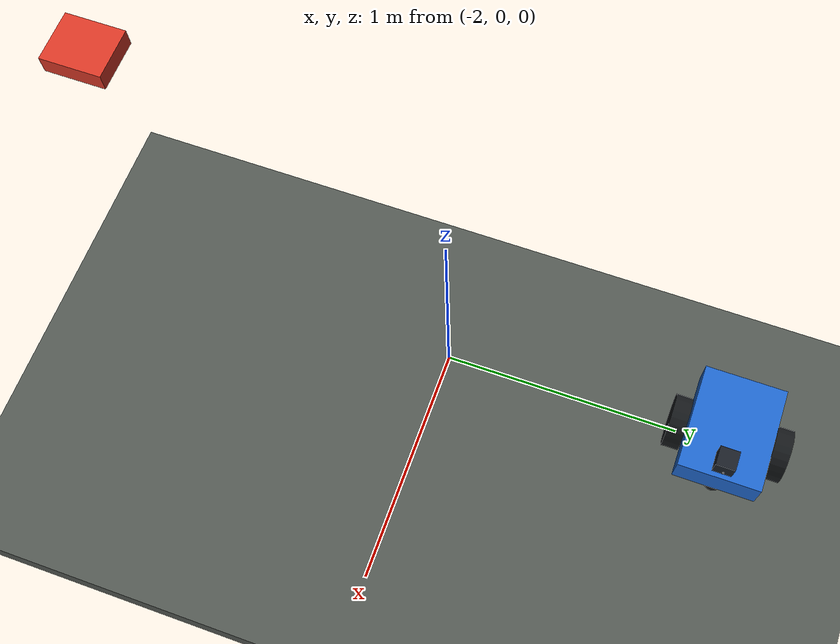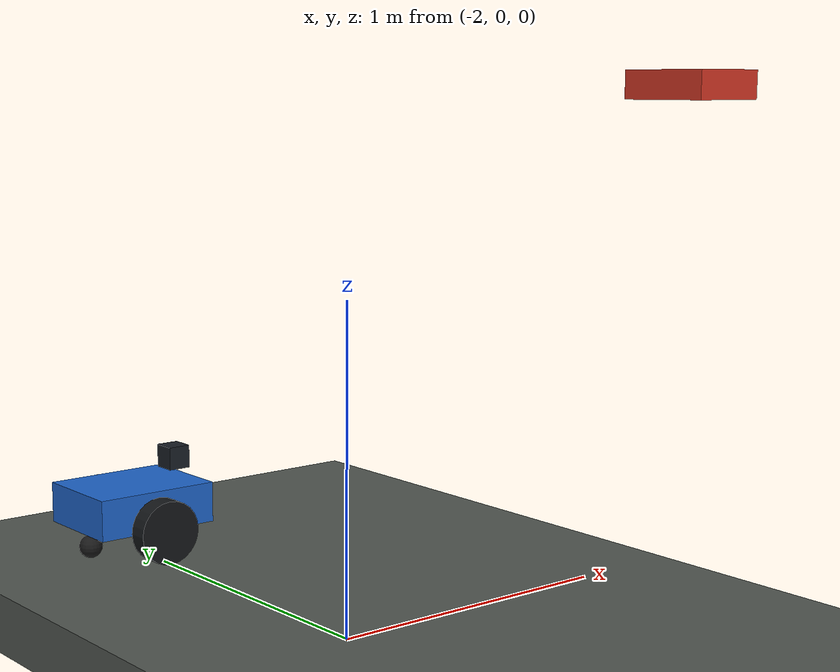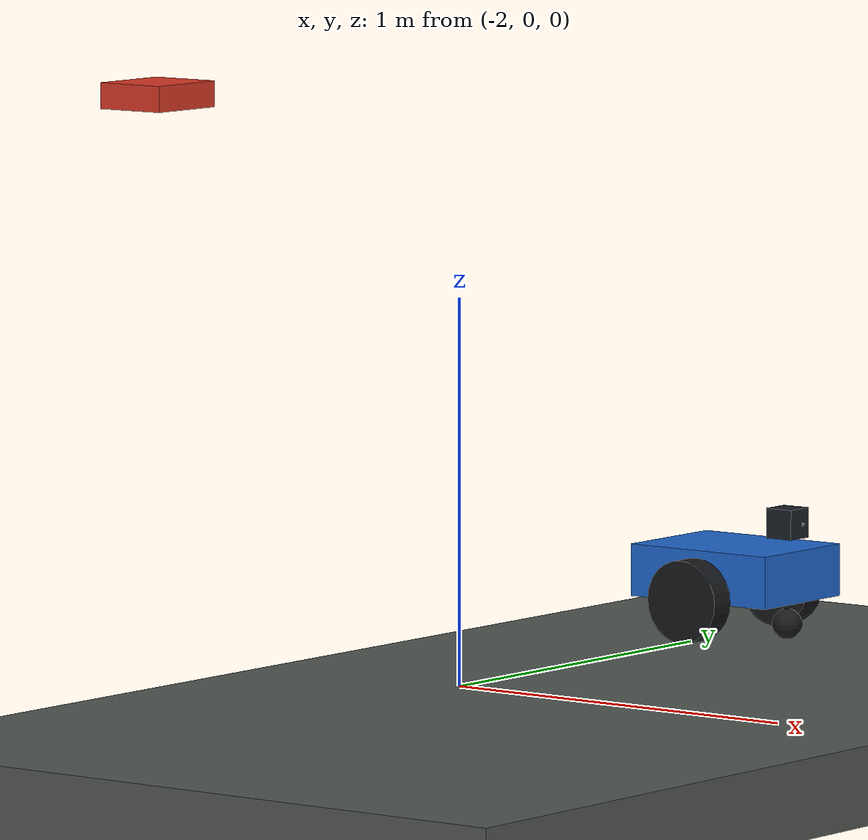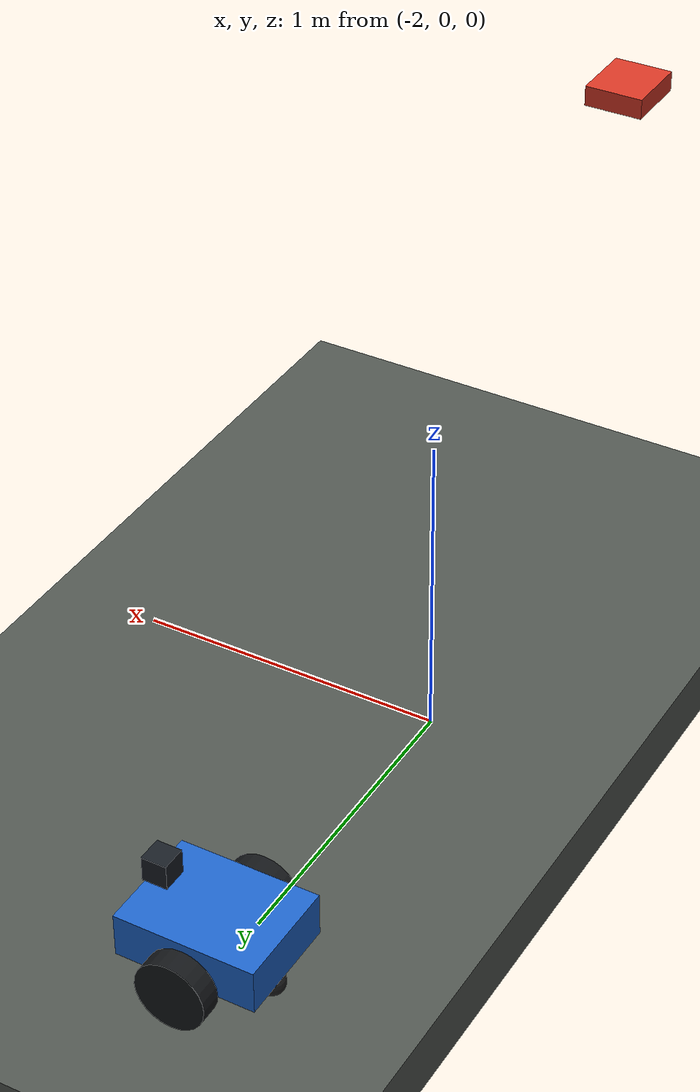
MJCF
<mujoco model="inspection_pair">
  <compiler angle="radian" inertiafromgeom="auto"/>
  <option timestep="0.002" gravity="0 0 -9.81" integrator="implicitfast" cone="elliptic"/>
  <default><geom friction="0.9 0.005 0.001" solref="0.01 1" condim="4"/><joint damping="0.02"/></default>
  <worldbody>
    <geom name="floor" type="box" size="9 6 .1" pos="2 0 -.1" rgba=".32 .34 .32 1"/>
    <body name="drone" pos="-2 -1.2 1.6">
      <freejoint name="drone_free"/>
      <geom name="drone_chassis" type="box" size=".0925 .106 .032" mass=".377" rgba=".85 .22 .15 1"/>
      <site name="drone_camera" pos=".035 0 .012"/>
      <site name="drone_imu"/>
    </body>
    <body name="rover" pos="-2 1.2 .17">
      <freejoint name="rover_free"/>
      <geom name="rover_chassis" type="box" size=".22 .17 .07" mass="7" rgba=".12 .4 .8 1"/>
      <geom name="rover_camera_housing" type="box" size=".04 .04 .04" pos=".17 0 .14" mass=".15" rgba=".1 .12 .15 1"/>
      <site name="rover_camera" pos=".22 0 .14"/>
      <site name="rover_imu"/>
      <body name="left_wheel" pos="0 .21 -.06"><joint name="left_wheel_joint" type="hinge" axis="0 1 0" damping=".05"/>
        <geom name="left_tire" type="cylinder" size=".11 .035" quat=".70710678 .70710678 0 0" mass=".45" rgba=".08 .09 .1 1"/>
      </body>
      <body name="right_wheel" pos="0 -.21 -.06"><joint name="right_wheel_joint" type="hinge" axis="0 1 0" damping=".05"/>
        <geom name="right_tire" type="cylinder" size=".11 .035" quat=".70710678 .70710678 0 0" mass=".45" rgba=".08 .09 .1 1"/>
      </body>
      <geom name="front_caster" type="sphere" size=".04" pos=".17 0 -.13" mass=".08" friction=".01 .001 .001" priority="1" rgba=".1 .1 .1 1"/>
      <geom name="rear_caster" type="sphere" size=".04" pos="-.17 0 -.13" mass=".08" friction=".01 .001 .001" priority="1" rgba=".1 .1 .1 1"/>
    </body>
  </worldbody>
  <actuator>
    <velocity name="left_drive" joint="left_wheel_joint" kv="3" ctrlrange="-6 6" forcerange="-3 3"/>
    <velocity name="right_drive" joint="right_wheel_joint" kv="3" ctrlrange="-6 6" forcerange="-3 3"/>
  </actuator>
  <sensor>
    <gyro name="drone_gyro" site="drone_imu"/><accelerometer name="drone_accelerometer" site="drone_imu"/>
    <gyro name="rover_gyro" site="rover_imu"/><accelerometer name="rover_accelerometer" site="rover_imu"/>
    <jointpos name="left_encoder" joint="left_wheel_joint"/><jointpos name="right_encoder" joint="right_wheel_joint"/>
    <jointvel name="left_speed" joint="left_wheel_joint"/><jointvel name="right_speed" joint="right_wheel_joint"/>
  </sensor>
</mujoco>
